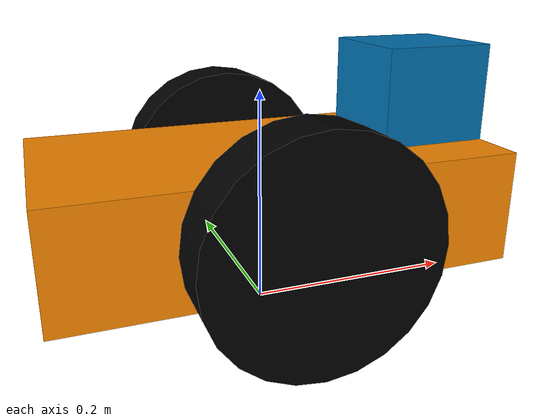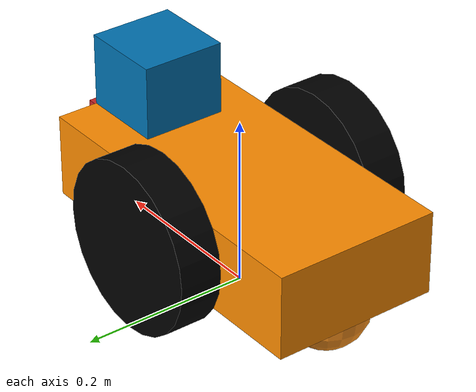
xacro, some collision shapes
<?xml version='1.0'?>

<robot name="my_robot" xmlns:xacro="http://www.ros.org/wiki/xacro">

  <link name="robot_footprint"></link>

  <joint name="robot_footprint_joint" type="fixed">
    <origin xyz="0.0 0.0 0.1" rpy="0 0 0" />
    <parent link="robot_footprint"/>
    <child link="Chassis" />
  </joint>

  <joint name="LW_joint" type="continuous">
    <origin xyz="0.0 -0.1255 0.0" rpy="0 0 0" />
    <child link="LWheel"/>
    <parent link="Chassis" />
    <axis xyz="0 1 0" rpy="0 0 0" />
  </joint>

  <!-- 'continuous' joint type has no max/min limits -->
  <joint name="RW_joint" type="continuous">

    <child link="RWheel"/>
    <parent link="Chassis" />

    <!-- The child link relative to the parent -->
    <origin xyz="0.0 0.1255 0.0" rpy="0 0 0" />

    <!-- Axis of revolution in the child frame -->
    <axis xyz="0 1 0" rpy="0 0 0" />
  </joint>

  <joint name="Cam_joint" type="fixed">
    <origin xyz="0.219 0 0.02" rpy="0 0 0" />
    <child link="camera"/>
    <parent link="Chassis" />
    <!-- axis is not used with fixed joint types -->
  </joint>

  <joint name="Las_joint" type="fixed">
    <origin xyz="0.15 0 0.087" rpy="0 0 0" />
    <child link="hokuyo"/>
    <parent link="Chassis" />
    <!-- axis is not used with fixed joint types -->
  </joint>

  <!-- CHASSIS CHASSIS CHASSIS CHASSIS CHASSIS CHASSIS -->
  <link name='Chassis'>
    <!-- I think this is SDF format; should not be here -->

    <inertial>
      <mass value="15.0"/>
      <origin xyz="0.0 0 0" rpy=" 0 0 0"/>
      <inertia
	  ixx="0.1" ixy="0" ixz="0"
	  iyy="0.1" iyz="0"
	  izz="0.1"
	  />
    </inertial>

    <collision name='collision'>
      <origin xyz="0 0 0" rpy=" 0 0 0"/>
      <geometry>
	<box size=".4 .2 .1"/>
      </geometry>
    </collision>

    <visual name='Chassis_visual'>
      <origin xyz="0 0 0" rpy=" 0 0 0"/>
      <geometry>
	<box size=".4 .2 .1"/>
      </geometry>
      <material name="orange">
	<color rgba="1.0 0.55 0 1"/>
      </material>
    </visual>

    <!-- REAR CASTER -->
    <collision name='back_caster_collision'>
      <origin xyz="-0.15 0 -0.05" rpy=" 0 0 0"/>
      <geometry>
	<sphere radius="0.05"/>
      </geometry>
    </collision>

    <visual name='back_caster_visual'>
      <origin xyz="-0.15 0 -0.05" rpy=" 0 0 0"/>
      <geometry>
	<sphere radius="0.05"/>
      </geometry>
    </visual>

    <!-- FRONT CASTER -->
    <collision name='front_caster_collision'>
      <origin xyz="0.15 0 -0.05" rpy=" 0 0 0"/>
      <geometry>
	<sphere radius="0.05"/>
      </geometry>
    </collision>

    <visual name='front_caster_visual'>
      <origin xyz="0.15 0 -0.05" rpy=" 0 0 0"/>
      <geometry>
	<sphere radius="0.05"/>
      </geometry>
    </visual>

  </link>

  <!-- LEFT WHEEL LEFT WHEEL LEFT WHEEL LEFT WHEEL LEFT WHEEL -->
  <link name="LWheel">

    <inertial>
      <mass value="3.0"/>
      <origin xyz="0.0 0 0" rpy=" 0 0 0"/>
      <inertia
	  ixx="0.1" ixy="0" ixz="0"
	  iyy="0.1" iyz="0"
	  izz="0.1"
	  />
    </inertial>

    <visual name='LWheel_visual'>
      <origin xyz="0 0 0" rpy="0 1.5707 1.5707"/>
      <geometry>
	<cylinder radius="0.1" length="0.05" />
      </geometry>
      <material name="tire">
	<color rgba="0 0 0 1"/>
      </material>
    </visual>

    <collision name='LWheel_collision'>
      <origin xyz="0 0 0" rpy="0 1.5707 1.5707"/>
      <geometry>
	<cylinder radius="0.1" length="0.05" />
      </geometry>
    </collision>

  </link>

  <!-- RIGHT WHEEL RIGHT WHEEL RIGHT WHEEL RIGHT WHEEL RIGHT WHEEL -->
  <link name="RWheel">

    <inertial>
      <mass value="3.0"/>
      <origin xyz="0.0 0 0" rpy=" 0 0 0"/>
      <inertia
	  ixx="0.1" ixy="0" ixz="0"
	  iyy="0.1" iyz="0"
	  izz="0.1"
	  />
    </inertial>

    <visual name='RWheel_visual'>
      <origin xyz="0 0 0" rpy="0 1.5707 1.5707"/>
      <geometry>
	<cylinder radius="0.1" length="0.05" />
      </geometry>
      <material name="tire">
	<color rgba="0 0 0 1"/>
      </material>
    </visual>

    <collision name='RWheel_collision'>
      <origin xyz="0 0 0" rpy="0 1.5707 1.5707"/>
      <geometry>
	<cylinder radius="0.1" length="0.05" />
      </geometry>
    </collision>

  </link>

  <!-- SENSORS SENSORS SENSORS SENSORS SENSORS SENSORS -->
  <link name="hokuyo">
    <intertial>
      <mass value="0.02"/>
      <origin xyz="0.0 0 0" rpy=" 0 0 0"/>
      <inertia
	  ixx="2e-3" ixy="0" ixz="0"
	  iyy="2e-3" iyz="0"
	  izz="2e-3"
	  />
    </intertial>
    <collision>
      <origin xyz="0 0 0" rpy="0 0 0"  />
      <geometry>
	<box size="0.1 0.1 0.1" />
      </geometry>
    </collision>
    <visual>
      <origin xyz="0 0 0" rpy="0 0 0" />
      <geometry>
	<mesh filename="package://my_robot/meshes/hokuyo.dae"/>
      </geometry>
    </visual>
  </link>

  <link name="camera">
    <intertial>
      <mass value="0.08"/>
      <origin xyz="0.0 0 0" rpy=" 0 0 0"/>
      <inertia
	  ixx="0.01" ixy="0" ixz="0"
	  iyy="0.01" iyz="0"
	  izz="0.01"
	  />
    </intertial>
    <visual name='camera_visual'>
      <origin xyz="0 0 0" rpy="0 0 0"/>
      <geometry>
	<box size="0.036 0.07 0.024" />
      </geometry>
      <!-- material name="cyan"/ -->
    </visual>
    <collision name='camera_collision'>
      <origin xyz="0 0 0" rpy="0 0 0"/>
      <geometry>
	<box size="0.038 0.08 0.055" />
      </geometry>
    </collision>
  </link>

  <gazebo reference="RWheel" >
    <material>Gazebo/Black</material>
  </gazebo>
  <gazebo reference="LWheel" >
    <material>Gazebo/Black</material>
  </gazebo>
  <gazebo reference="camera" >
    <material>Gazebo/Red</material>
  </gazebo>
  <gazebo reference="Chassis" >
    <material>Gazebo/Orange</material>
  </gazebo>

</robot>
